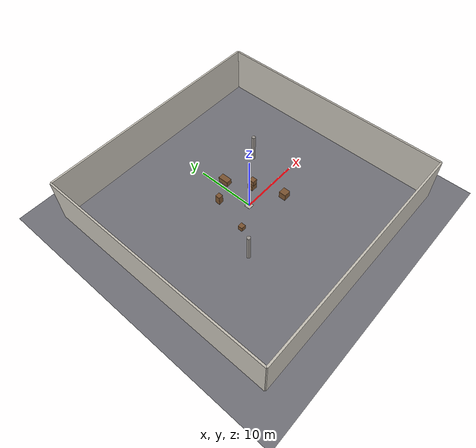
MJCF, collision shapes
<mujoco model="following_env_warehouse_preview">
  <include file="/mnt/ubuntu-data/AI_Projects/flow_matching_uavs/sim/scenes/scene_warehouse.xml"/>
  <include file="/mnt/ubuntu-data/AI_Projects/flow_matching_uavs/sim/assets/skydio_x2.xml"/>
  <include file="/mnt/ubuntu-data/AI_Projects/flow_matching_uavs/sim/assets/target_body.xml"/>
</mujoco>

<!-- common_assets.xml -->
<mujoco model="common_assets">

  <asset>
    <!-- Skybox: gradient sky, shared by outdoor-facing scenes -->
    <texture name="sky_gradient" type="skybox" builtin="gradient"
             rgb1="0.45 0.62 0.85" rgb2="0.9 0.95 1.0" width="512" height="512"/>

    <!-- Ground textures -->
    <texture name="floor_checker" type="2d" builtin="checker"
              rgb1="0.55 0.55 0.58" rgb2="0.35 0.35 0.38"
              width="512" height="512" mark="edge" markrgb="0.2 0.2 0.2"/>
    <material name="mat_floor_checker" texture="floor_checker"
              texrepeat="12 12" reflectance="0.05" specular="0.1" shininess="0.05"/>

    <texture name="ground_concrete" type="2d" builtin="flat" rgb1="0.56 0.55 0.53"
              width="512" height="512"/>
    <material name="mat_concrete" texture="ground_concrete"
              texrepeat="10 10" reflectance="0.03" specular="0.05" shininess="0.02"/>

    <texture name="ground_grass" type="2d" builtin="checker" rgb1="0.22 0.4 0.16" rgb2="0.26 0.44 0.18"
              width="256" height="256"/>
    <material name="mat_grass" texture="ground_grass"
              texrepeat="24 24" reflectance="0.0" specular="0.02" shininess="0.01"/>

    <!-- Wall / panel texture (warehouse interior) -->
    <texture name="wall_panel" type="2d" builtin="flat" rgb1="0.78 0.76 0.72"
              width="256" height="256"/>
    <material name="mat_wall" texture="wall_panel" texrepeat="4 2"
              reflectance="0.02" specular="0.05" shininess="0.02"/>

    <!-- Crate / prop textures -->
    <texture name="crate_wood" type="2d" builtin="checker" rgb1="0.55 0.38 0.22" rgb2="0.42 0.28 0.16"
              width="128" height="128" mark="cross" markrgb="0.3 0.2 0.1"/>
    <material name="mat_crate" texture="crate_wood" texrepeat="2 2"
              reflectance="0.02" specular="0.1" shininess="0.05"/>

    <material name="mat_concrete_block" rgba="0.62 0.6 0.58 1" reflectance="0.03"/>
  </asset>

</mujoco>

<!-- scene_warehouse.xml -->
<mujoco model="scene_warehouse">

  <include file="common_assets.xml"/>

  <option gravity="0 0 -9.81"/>

  <visual>
    <headlight ambient="0.35 0.35 0.35" diffuse="0.5 0.5 0.5" specular="0.1 0.1 0.1"/>
    <rgba haze="0.6 0.6 0.65 1"/>
  </visual>

  <worldbody>
    <!-- Lighting: randomize pos/dir per episode at reset via scene_loader.py -->
    <light name="key_light" pos="4 -3 6" dir="-0.4 0.3 -1" diffuse="0.8 0.8 0.75" specular="0.2 0.2 0.2" castshadow="true"/>
    <light name="fill_light" pos="-4 4 5" dir="0.3 -0.3 -1" diffuse="0.3 0.3 0.32" castshadow="false"/>

    <!-- Floor -->
    <geom name="floor" type="plane" size="25 25 0.1" material="mat_floor_checker" pos="0 0 0"/>

    <!-- Walls: 4 panels forming a loose warehouse boundary, far enough apart
         to give the drone room to follow without early clipping -->
    <geom name="wall_north" type="box" size="20 0.15 4" pos="0 20 4" material="mat_wall"/>
    <geom name="wall_south" type="box" size="20 0.15 4" pos="0 -20 4" material="mat_wall"/>
    <geom name="wall_east"  type="box" size="0.15 20 4" pos="20 0 4" material="mat_wall"/>
    <geom name="wall_west"  type="box" size="0.15 20 4" pos="-20 0 4" material="mat_wall"/>

    <!-- Static crate clutter — scattered, varied heights, gives the vision
         head non-trivial mid-ground geometry to key off besides the tag -->
    <geom name="crate_01" type="box" size="0.5 0.5 0.5" pos="3 2 0.5" material="mat_crate"/>
    <geom name="crate_02" type="box" size="0.4 0.4 0.8" pos="-2.5 4 0.8" material="mat_crate"/>
    <geom name="crate_03" type="box" size="0.6 0.6 0.6" pos="5 -3 0.6" material="mat_crate"/>
    <geom name="crate_04" type="box" size="0.4 0.4 0.4" pos="-4 -2 0.4" material="mat_crate"/>
    <geom name="crate_05" type="box" size="0.5 0.9 0.5" pos="1 6 0.5" material="mat_crate"/>
    <geom name="crate_stack_a" type="box" size="0.45 0.45 0.45" pos="3.2 2 1.4" material="mat_crate"/>

    <!-- Concrete block pillars for stronger vertical parallax at distance -->
    <geom name="pillar_01" type="cylinder" size="0.3 2.5" pos="8 6 2.5" material="mat_concrete_block"/>
    <geom name="pillar_02" type="cylinder" size="0.3 2.5" pos="-7 -6 2.5" material="mat_concrete_block"/>
  </worldbody>
</mujoco>

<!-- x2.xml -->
<mujoco model="Skydio X2">
  <compiler inertiafromgeom="true" angle="degree" autolimits="true" assetdir="assets"/>

  <option timestep=".005" iterations="50" tolerance="1e-16" solver="Newton" jacobian="dense" cone="pyramidal" density="1.225" viscosity="1.8e-5">
    <flag contact = "enable"/>
  </option>

  <default>
    <default class="x2">
      <geom mass="0"/>
      <motor ctrlrange="0 200"/>
      <mesh scale="0.01 0.01 0.01"/>
      <default class="visual">
        <geom group="2" type="mesh" contype="0" conaffinity="0"/>
      </default>
      <default class="collision">
        <geom group="3" type="box"/>
        <default class="rotor">
          <geom type="ellipsoid" size=".13 .13 .01"/>
        </default>
      </default>
      <site group="5"/>
    </default>
  </default>

  <asset>
    <texture type="2d" file="X2_lowpoly_texture_SpinningProps_1024.png"/>
    <material name="phong3SG" texture="X2_lowpoly_texture_SpinningProps_1024"/>
    <material name="invisible" rgba="0 0 0 0"/>

    <mesh class="x2" file="X2_lowpoly.obj"/>
    <mesh name="BASE" file="stls/Base.STL"/>
    <mesh name="LINK1" file="stls/Link1.STL"/>
    <mesh name="LINK2" file="stls/Link2.STL"/>
    <mesh name="LINK3" file="stls/Link3.STL"/>
    <mesh name="DYNM" file="stls/XH430.STL"/>
  </asset>

  <worldbody>
    <light name="spotlight" mode="targetbodycom" target="x2" pos="0 -1 2"/>
    <body name="x2" pos="0 0 0.7" childclass="x2">
      <freejoint/>
      <camera name="track" pos="-1 0 .5" xyaxes="0 -1 0 1 0 2" mode="trackcom"/>
      <site name="imu" pos="0 0 .02"/>
      <geom material="phong3SG" mesh="X2_lowpoly" class="visual" quat="0 0 1 1"/>
      <geom class="collision" size=".06 .027 .02" pos=".04 0 .02"/>
      <geom class="collision" size=".06 .027 .02" pos=".04 0 .06"/>
      <geom class="collision" size=".05 .027 .02" pos="-.07 0 .065"/>
      <geom class="collision" size=".023 .017 .01" pos="-.137 .008 .065" quat="1 0 0 1"/>
      <geom name="rotor1" class="rotor" pos="-.14 -.18 .05" mass=".25"/>
      <geom name="rotor2" class="rotor" pos="-.14 .18 .05" mass=".25"/>
      <geom name="rotor3" class="rotor" pos=".14 .18 .08" mass=".25"/>
      <geom name="rotor4" class="rotor" pos=".14 -.18 .08" mass=".25"/>
      <geom size=".16 .04 .02" pos="0 0 0.02" type="ellipsoid" mass=".325" class="visual" material="invisible"/>
      <site name="thrust1" pos="-.14 -.18 .05"/>
      <site name="thrust2" pos="-.14 .18 .05"/>
      <site name="thrust3" pos=".14 .18 .08"/>
      <site name="thrust4" pos=".14 -.18 .08"/>
    </body>
  </worldbody>

  <actuator>
    <motor class="x2" name="thrust1" site="thrust1" gear="0 0 1 0 0 -.0201"/>
    <motor class="x2" name="thrust2" site="thrust2" gear="0 0 1 0 0  .0201"/>
    <motor class="x2" name="thrust3" site="thrust3" gear="0 0 1 0 0  .0201"/>
    <motor class="x2" name="thrust4" site="thrust4" gear="0 0 1 0 0 -.0201"/>
  </actuator>

  <sensor>
    <gyro name="body_gyro" site="imu"/>
    <accelerometer name="body_linacc" site="imu"/>
    <framequat name="body_quat" objtype="site" objname="imu"/>
  </sensor>

  <keyframe>
    <key name="hover" qpos="0 0 .3 1 0 0 0" ctrl="3.2495625 3.2495625 3.2495625 3.2495625"/>
  </keyframe>
</mujoco>

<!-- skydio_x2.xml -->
<mujoco model="skydio_x2_include">

  <include file="../../mujoco_menagerie/skydio_x2/x2.xml"/>

</mujoco>

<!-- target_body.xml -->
<mujoco model="target_body_include">

  <asset>
    <texture name="tex_apriltag" type="2d"
              file="textures/apriltag_36h11_id0.png"/>
    <material name="mat_apriltag" texture="tex_apriltag" reflectance="0.0"
              specular="0.0"/>
    <material name="mat_plate" rgba="0.15 0.15 0.15 1" reflectance="0.0"/>
  </asset>

  <worldbody>
    <body name="ground_target" pos="0 0 0.02">
      <freejoint name="target_free"/>
      <!-- structural plate: carries mass, has collision, plain dark material -->
      <geom name="target_plate" type="box" size="0.5 0.5 0.01"
            material="mat_plate" mass="1.0"/>
      <geom name="target_tag_face" type="box" size="0.5 0.5 0.001"
            pos="0 0 0.012" material="mat_apriltag" mass="0"
            contype="0" conaffinity="0"/>
      <!-- site for cheap ground-truth pose logging during data collection,
           independent of whatever the vision pipeline detects -->
      <site name="target_site" pos="0 0 0.014" size="0.01"/>
    </body>
  </worldbody>
</mujoco>
